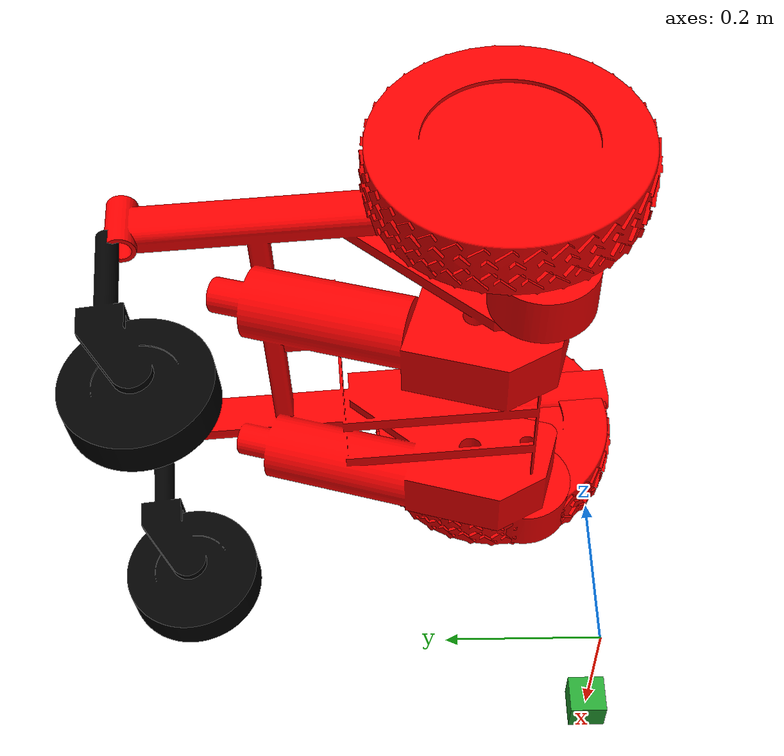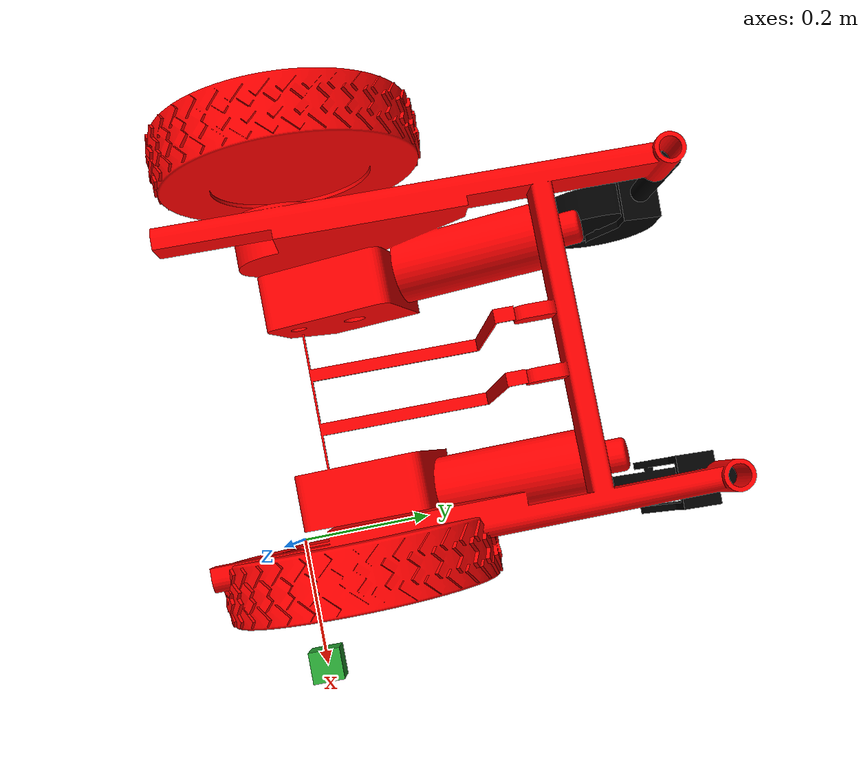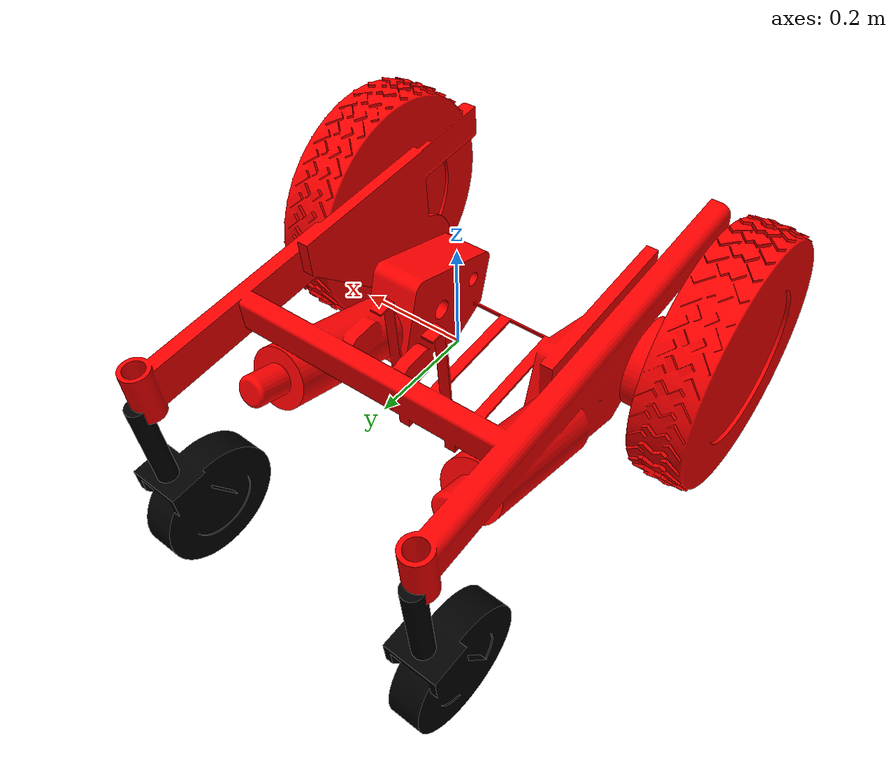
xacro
<?xml version='1.0'?>
<robot name="lawnmow" xmlns:xacro="http://www.ros.org/wiki/xacro">
  <xacro:property name="cameraSize" value="0.05"/>
  <xacro:property name="cameraMass" value="0.1"/>
  <xacro:include filename="$(find lawnmow_description)/urdf/lawnmow.gazebo" />
  <xacro:include filename="$(find lawnmow_description)/urdf/materials.xacro" />
  <xacro:include filename="$(find lawnmow_description)/urdf/macros.xacro" />

  <link name='chassis'>

    <pose>0 0 0.1 0 0 0</pose>

    <inertial>
      <mass value="10.0"/>
      <origin xyz="0.0 0 0.1" rpy=" 0 0 0"/>
      <inertia
          ixx="1.0" ixy="0" ixz="0"
          iyy="1.0" iyz="0"
          izz="1.0"
      />
    </inertial>

    <collision name='collision'>
      <geometry>
        <box size="0.657359 0.4441 0.085"/>
      </geometry>
    </collision>

    <visual name='chassis_visual'>
      <origin xyz="0 0 0" rpy=" 1.58 0 0"/>
      <geometry>
        <mesh scale=".0010 .0010 .0010" filename="package://lawnmow_description/meshes/frame.stl"/>
      </geometry>
      <material name="red">
          <color rgba="1 0 0 1"/>
      </material>
    </visual>
  </link>

  <link name="lfcaster">
    <collision name='lfcollision'>
      <origin xyz="0 0 0" rpy="0 -1.55 0"/>
      <geometry>
        <mesh scale=".0010 .0010 .0010" filename="package://lawnmow_description/meshes/caster.stl"/>
      </geometry>

      <surface>
        <friction>
          <ode>
            <mu>0</mu>
            <mu2>0</mu2>
            <slip1>1</slip1>
            <slip2>1</slip2>
          </ode>
        </friction>
      </surface>
    </collision>

    <visual name='lfcaster_visual'>
      <origin xyz="0 0 0" rpy="0 -1.55 0"/>
      <geometry>
        <mesh scale=".0010 .0010 .0010" filename="package://lawnmow_description/meshes/caster.stl"/>
      </geometry>
      <material name="black">
          <color rgba="0 0 0 1"/>
      </material>
    </visual>
    <inertial>
      <origin xyz="0 0 0" rpy="0 0 0"/>
      <mass value="1.5"/>
      <cylinder_inertia m="1.5" r="0.167022" h="0.07"/>
      <inertia
        ixx="1.0" ixy="0.0" ixz="0.0"
        iyy="1.0" iyz="0.0"
        izz="1.0"/>
    </inertial>
  </link>

  <link name="rfcaster">
    <collision name='rfcollision'>
      <origin xyz="0 0 0" rpy="0 -1.55 0"/>
      <geometry>
        <mesh scale=".0010 .0010 .0010" filename="package://lawnmow_description/meshes/caster.stl"/>
      </geometry>
      <surface>
        <friction>
          <ode1>
            <mu>0</mu>
            <mu2>0</mu2>
            <slip1>1</slip1>
            <slip2>1</slip2>
          </ode1>
        </friction>
      </surface>
    </collision>

    <visual name='rfcaster_visual'>
      <origin xyz="0 0 0" rpy="0 -1.55 0"/>
      <geometry>
        <mesh scale=".0010 .0010 .0010" filename="package://lawnmow_description/meshes/caster.stl"/>
      </geometry>
      <material name="black">
          <color rgba="0 0 0 1"/>
      </material>
    </visual>
    <inertial>
      <origin xyz="0 0 0" rpy="0 0 0"/>
      <mass value="1.5"/>
      <cylinder_inertia m="1.5" r="0.167022" h="0.07"/>
      <inertia
        ixx="1.0" ixy="0.0" ixz="0.0"
        iyy="1.0" iyz="0.0"
        izz="1.0"/>
    </inertial>
  </link>

  <link name="left_wheel">
    <collision name="collision">
      <origin xyz="0 0 0" rpy="0 0 0"/>
      <geometry>
        <mesh scale=".0010 .0010 .0010" filename="package://lawnmow_description/meshes/wheel.stl"/>
      </geometry>
    </collision>

    <visual name="left_wheel_visual">
      <origin xyz="0 0 0" rpy="0 0 0"/>
      <geometry>
        <mesh scale=".0010 .0010 .0010" filename="package://lawnmow_description/meshes/wheel.stl"/>
      </geometry>
      <material name="black">
          <color rgba="1 0 0 1"/>
      </material>
    </visual>

    <inertial>
      <origin xyz="0 0 0" rpy="0 0 0"/>
      <mass value="1.5"/>
      <cylinder_inertia m="1.5" r="0.167022" h="0.07"/>
      <inertia
        ixx="1.0" ixy="0.0" ixz="0.0"
        iyy="1.0" iyz="0.0"
        izz="1.0"/>
    </inertial>
  </link>

  <link name="right_wheel">
    <collision name="collision">
      <origin xyz="0 0 0" rpy="0 0 0"/>
      <geometry>
        <cylinder radius="0.167022" length="0.07"/>
      </geometry>
    </collision>

    <visual name="right_wheel_visual">
      <origin xyz="0 0 0" rpy="0 0 0"/>
      <geometry>
        <mesh scale=".0010 .0010 .0010" filename="package://lawnmow_description/meshes/wheel.stl"/>
      </geometry>
      <material name="black">
          <color rgba="1 0 0 1"/>
      </material>
    </visual>

    <inertial>
      <origin xyz="0.04 0.12 .18" rpy="1.58 0 0"/>
      <mass value="1.5"/>
      <cylinder_inertia m="1.5" r="0.167022" h="0.07"/>
      <inertia
        ixx="1.0" ixy="0.0" ixz="0.0"
        iyy="1.0" iyz="0.0"
        izz="1.0"/>
    </inertial>
  </link>

  <joint type="continuous" name="lfcaster_hinge">
    <origin xyz="-0.4 0.605 .35" rpy=".1 0 3.1"/>
    <child link="lfcaster"/>
    <parent link="chassis"/>
    <axis xyz="0 0 1" rpy="0 0 0"/>
    <limit effort="100" velocity="100"/>
    <joint_properties damping="0.0" friction="0.0"/>
  </joint>

  <joint type="continuous" name="rfcaster_hinge">
    <origin xyz="0.016 0.605 .35" rpy=".1 0 3.1"/>
    <child link="rfcaster"/>
    <parent link="chassis"/>
    <axis xyz="0 0 1" rpy="0 0 0"/>
    <limit effort="100" velocity="100"/>
    <joint_properties damping="0.0" friction="0.0"/>
  </joint>

  <joint type="continuous" name="left_wheel_hinge">
    <origin xyz="-0.5 0.12 .18" rpy="0 0 0"/>
    <child link="left_wheel"/>
    <parent link="chassis"/>
    <axis xyz="0 1 0" rpy="0 0 0"/>
    <limit effort="100" velocity="100"/>
    <joint_properties damping="0.0" friction="0.0"/>
  </joint>

  <joint type="continuous" name="right_wheel_hinge">
    <origin xyz="0.04 0.12 .18" rpy="0 0 0"/>
    <child link="right_wheel"/>
    <parent link="chassis"/>
    <axis xyz="0 1 0" rpy="0 0 0"/>
    <limit effort="100" velocity="100"/>
    <joint_properties damping="0.0" friction="0.0"/>
  </joint>

  <link name="camera">
    <collision>
      <origin xyz="0 0 0" rpy="0 0 0"/>
      <geometry>
        <box size="${cameraSize} ${cameraSize} ${cameraSize}"/>
      </geometry>
    </collision>

    <visual>
      <origin xyz="0 0 0" rpy="0 0 0"/>
      <geometry>
        <box size="${cameraSize} ${cameraSize} ${cameraSize}"/>
      </geometry>
      <material name="green"/>
    </visual>

    <inertial>
      <mass value="${cameraMass}" />
      <origin xyz="0 0 0" rpy="0 0 0"/>
      <box_inertia m="${cameraMass}" x="${cameraSize}" y="${cameraSize}" z="${cameraSize}" />
      <inertia ixx="1e-6" ixy="0" ixz="0" iyy="1e-6" iyz="0" izz="1e-6" />
    </inertial>
  </link>

  <joint name="camera_joint" type="fixed">
    <axis xyz="0 1 0" />
    <origin xyz=".2 0 0" rpy="0 0 0"/>
    <parent link="chassis"/>
    <child link="camera"/>
  </joint>

</robot>

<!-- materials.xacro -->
<robot>

  <material name="Black">
    <color rgba="0 0 0 1"/>
  </material>

  <material name="Red">
    <color rgba="0.8 0.0 0.0 1.0"/>
  </material>

  <material name="White">
    <color rgba="1.0 1.0 1.0 1.0"/>
  </material>

</robot>
